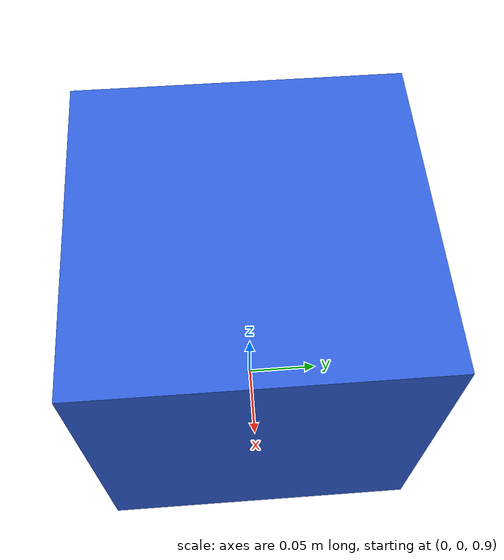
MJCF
<mujoco model="drop">
  <option gravity="0 0 -9.81" timestep="0.002"/>
  <worldbody>
    <light pos="0 0 3"/>
    <geom name="floor" type="plane" size="3 3 0.1" friction="1 0.005 0.0001"
          rgba="0.8 0.9 0.8 1"/>
    <body name="box" pos="0 0 1">
      <freejoint/>
      <geom type="box" size="0.1 0.1 0.1" density="500" rgba="0.2 0.4 0.9 1"/>
      <site name="imu_site" pos="0 0 0" size="0.02"/>
    </body>
  </worldbody>
  <sensor>
    <gyro name="gyro" site="imu_site"/>
    <accelerometer name="acc" site="imu_site"/>
    <framepos name="pos" objtype="site" objname="imu_site"/>
  </sensor>
</mujoco>
